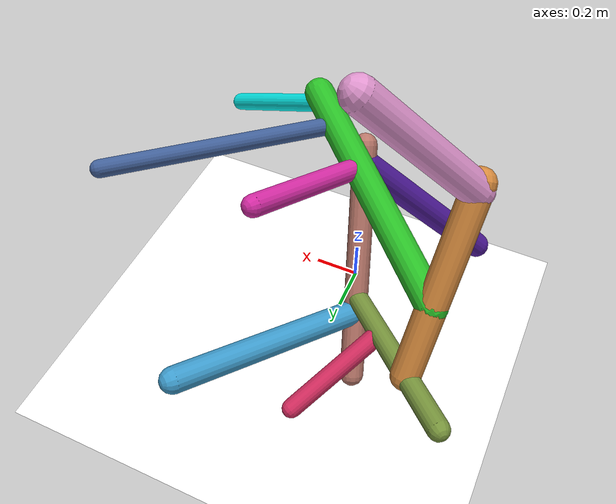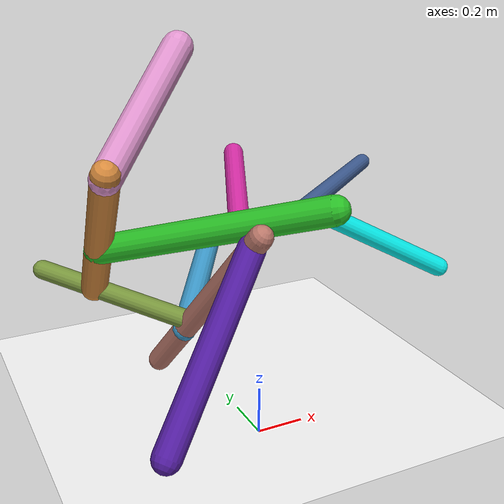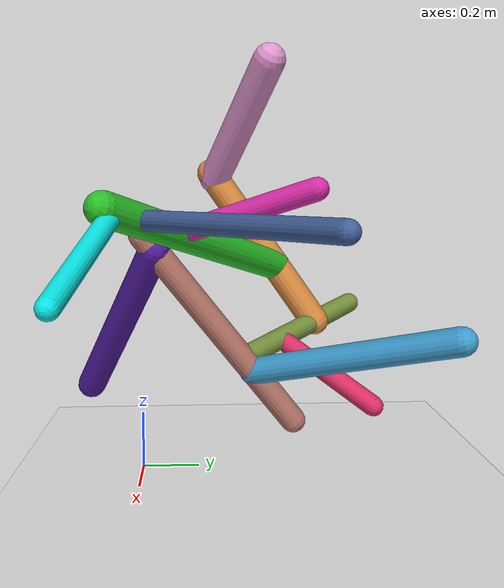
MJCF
<mujoco model="morphology">
  <option timestep="0.01"/>
  <default>
    <default class="/"/>
    <default class="0/"/>
    <default class="0/1/"/>
    <default class="0/2/"/>
    <default class="0/2/3/"/>
    <default class="0/2/4/"/>
    <default class="0/2/4/5/"/>
    <default class="0/2/4/5/6/"/>
    <default class="0/2/4/5/7/"/>
    <default class="0/2/4/5/8/"/>
    <default class="0/2/4/9/"/>
    <default class="0/10/"/>
  </default>
  <asset>
    <texture name="texplane" type="2d" builtin="checker" rgb1="0.10000000000000001 0.20000000000000001 0.29999999999999999" rgb2="0.20000000000000001 0.29999999999999999 0.40000000000000002" width="300" height="300"/>
    <material name="MatPlane" class="/" texture="texplane" texrepeat="20 20" specular="1" shininess="1" reflectance="0.5"/>
  </asset>
  <worldbody>
    <light name="//unnamed_light_0" class="/" directional="true" pos="0 0 1.5" dir="0 0 -1.3" cutoff="100" exponent="1" diffuse="1 1 1" specular="0.10000000000000001 0.10000000000000001 0.10000000000000001"/>
    <geom name="ground" class="/" type="plane" size="15 15 0.5" material="MatPlane" rgba="1 1 1 1"/>
    <site name="body" class="/" size="9.9999999999999995e-07 9.9999999999999995e-07 9.9999999999999995e-07" pos="0 0 0.84916887283325193"/>
    <body pos="0 0 0.84916887283325193" name="0/">
      <freejoint name="0/"/>
      <geom name="0/geom" class="0/" type="capsule" contype="1" conaffinity="1" condim="3" size="0.0494672707006482" rgba="0.72208494569027015 0.46383124850338331 0.41194762392329776 1" friction="0.59999999999999998 0.10000000000000001 0.10000000000000001" fromto="0 0 0 -0.21414844513648179 0.57323252468791863 -0.74916887572444424"/>
      <site name="0/end0" class="0/" size="0.0050000000000000001" pos="-0.21414844513648179 0.57323252468791863 -0.74916887572444424"/>
      <site name="0/attach1" class="0/" size="9.9999999999999995e-07 9.9999999999999995e-07 9.9999999999999995e-07" pos="-0.153136984130432 0.40991705534091105 -0.53572867250897194"/>
      <body pos="-0.153136984130432 0.40991705534091105 -0.53572867250897194" name="0/1/">
        <joint name="0/1/joint/" class="0/" type="hinge" axis="0 0 1" limited="true" range="-37.933956674139694 37.933956674139694"/>
        <geom name="0/1/geom" class="0/1/" type="capsule" contype="1" conaffinity="1" condim="3" size="0.052166626693578258" rgba="0.24075887596006418 0.60992251197264369 0.79980986442201107 1" friction="0.59999999999999998 0.10000000000000001 0.10000000000000001" fromto="0 0 0 0.44218960327257273 0.67677026487066705 0.19073556805387915"/>
        <site name="0/1/end1" class="0/1/" size="0.0050000000000000001" pos="0.44218960327257273 0.67677026487066705 0.19073556805387915"/>
      </body>
      <site name="0/attach2" class="0/" size="9.9999999999999995e-07 9.9999999999999995e-07 9.9999999999999995e-07" pos="-0.13791180717557591 0.3691623040323494 -0.48246548540198264"/>
      <body pos="-0.13791180717557591 0.3691623040323494 -0.48246548540198264" name="0/2/">
        <joint name="0/2/joint/" class="0/" type="hinge" axis="0 1 0" limited="true" range="-35.678086593743117 35.678086593743117"/>
        <geom name="0/2/geom" class="0/2/" type="capsule" contype="1" conaffinity="1" condim="3" size="0.042968340705630138" rgba="0.46536666383449166 0.57792519389536978 0.23382628635141456 1" friction="0.59999999999999998 0.10000000000000001 0.10000000000000001" fromto="0 0 0 -0.5069350259472547 0.50166222906680691 0.14133656650145254"/>
        <site name="0/2/end2" class="0/2/" size="0.0050000000000000001" pos="-0.5069350259472547 0.50166222906680691 0.14133656650145254"/>
        <site name="0/2/attach3" class="0/2/" size="9.9999999999999995e-07 9.9999999999999995e-07 9.9999999999999995e-07" pos="-0.16314656083371806 0.1614496201352284 0.045486252802656509"/>
        <body pos="-0.16314656083371806 0.1614496201352284 0.045486252802656509" name="0/2/3/">
          <joint name="0/2/3/joint/" class="0/2/" type="hinge" axis="1.3877787807814457e-17 -0.27117950446711175 0.96252879248205958" limited="true" range="-51.965993796605389 51.965993796605389"/>
          <geom name="0/2/3/geom" class="0/2/3/" type="capsule" contype="1" conaffinity="1" condim="3" size="0.039572520129649805" rgba="0.84469272069934365 0.17666229199153816 0.38157777708286333 1" friction="0.59999999999999998 0.10000000000000001 0.10000000000000001" fromto="0 0 0 0.22744192779543848 0.33448668980301632 -0.22217255837190053"/>
          <site name="0/2/3/end3" class="0/2/3/" size="0.0050000000000000001" pos="0.22744192779543848 0.33448668980301632 -0.22217255837190053"/>
        </body>
        <site name="0/2/attach4" class="0/2/" size="9.9999999999999995e-07 9.9999999999999995e-07 9.9999999999999995e-07" pos="-0.32471018202263396 0.32133276529823362 0.090531172410871955"/>
        <body pos="-0.32471018202263396 0.32133276529823362 0.090531172410871955" name="0/2/4/">
          <joint name="0/2/4/joint/" class="0/2/" type="hinge" axis="1.3877787807814457e-17 -0.27117950446711175 0.96252879248205958" limited="true" range="-47.616036304325462 47.616036304325462"/>
          <geom name="0/2/4/geom" class="0/2/4/" type="capsule" contype="1" conaffinity="1" condim="3" size="0.059001911700485798" rgba="0.8363445953944163 0.53938012407515412 0.23954322197817479 1" friction="0.59999999999999998 0.10000000000000001 0.10000000000000001" fromto="0 0 0 -0.044536394291860182 -0.43736008393658454 0.62893304217937773"/>
          <site name="0/2/4/end4" class="0/2/4/" size="0.0050000000000000001" pos="-0.044536394291860182 -0.43736008393658454 0.62893304217937773"/>
          <site name="0/2/4/attach5" class="0/2/4/" size="9.9999999999999995e-07 9.9999999999999995e-07 9.9999999999999995e-07" pos="-0.016828649983450815 -0.16526213866951178 0.23765044741841812"/>
          <body pos="-0.016828649983450815 -0.16526213866951178 0.23765044741841812" name="0/2/4/5/">
            <geom name="0/2/4/5/geom" class="0/2/4/5/" type="capsule" contype="1" conaffinity="1" condim="3" size="0.060904466573494957" rgba="0.1634184065751787 0.73945743559977251 0.15097514452572069 1" friction="0.59999999999999998 0.10000000000000001 0.10000000000000001" fromto="0 0 0 0.72954030359459465 -0.63215210639668196 0.25557717849418826"/>
            <site name="0/2/4/5/end5" class="0/2/4/5/" size="0.0050000000000000001" pos="0.72954030359459465 -0.63215210639668196 0.25557717849418826"/>
            <site name="0/2/4/5/attach6" class="0/2/4/5/" size="9.9999999999999995e-07 9.9999999999999995e-07 9.9999999999999995e-07" pos="0.45335811668746345 -0.39283818454432018 0.15882328603302046"/>
            <body pos="0.45335811668746345 -0.39283818454432018 0.15882328603302046" name="0/2/4/5/6/">
              <joint name="0/2/4/5/6/joint/" class="0/2/4/5/" type="hinge" axis="-2.7755575615628914e-17 0.37482236217575327 0.92709664912186407" limited="true" range="-54.536576295120234 54.536576295120234"/>
              <geom name="0/2/4/5/6/geom" class="0/2/4/5/6/" type="capsule" contype="1" conaffinity="1" condim="3" size="0.042355108393929343" rgba="0.82599712644444057 0.16630231200018109 0.6374901367281447 1" friction="0.59999999999999998 0.10000000000000001 0.10000000000000001" fromto="0 0 0 0.20295309187663357 0.47764977789031882 0.16041794843207324"/>
              <site name="0/2/4/5/6/end6" class="0/2/4/5/6/" size="0.0050000000000000001" pos="0.20295309187663357 0.47764977789031882 0.16041794843207324"/>
            </body>
            <site name="0/2/4/5/attach7" class="0/2/4/5/" size="9.9999999999999995e-07 9.9999999999999995e-07 9.9999999999999995e-07" pos="0.60885160669086402 -0.52757445168720285 0.21329675001228704"/>
            <body pos="0.60885160669086402 -0.52757445168720285 0.21329675001228704" name="0/2/4/5/7/">
              <joint name="0/2/4/5/7/joint/" class="0/2/4/5/" type="hinge" axis="0.68283072913089782 0.67731513484655681 -0.27383645385952038" limited="true" range="-52.252921503539604 52.252921503539604"/>
              <geom name="0/2/4/5/7/geom" class="0/2/4/5/7/" type="capsule" contype="1" conaffinity="1" condim="3" size="0.036105561881775904" rgba="0.24848776017168117 0.36883593790664815 0.58609742922836372 1" friction="0.59999999999999998 0.10000000000000001 0.10000000000000001" fromto="0 0 0 0.71967839977963144 0.59687852477562431 -0.0077393665497609287"/>
              <site name="0/2/4/5/7/end7" class="0/2/4/5/7/" size="0.0050000000000000001" pos="0.71967839977963144 0.59687852477562431 -0.0077393665497609287"/>
            </body>
            <site name="0/2/4/5/attach8" class="0/2/4/5/" size="9.9999999999999995e-07 9.9999999999999995e-07 9.9999999999999995e-07" pos="0.69072058591842544 -0.59851453191614756 0.24197760919728808"/>
            <body pos="0.69072058591842544 -0.59851453191614756 0.24197760919728808" name="0/2/4/5/8/">
              <joint name="0/2/4/5/8/joint/" class="0/2/4/5/" type="hinge" axis="-2.7755575615628914e-17 0.37482236217575327 0.92709664912186407" limited="true" range="-69.859859058551791 69.859859058551791"/>
              <geom name="0/2/4/5/8/geom" class="0/2/4/5/8/" type="capsule" contype="1" conaffinity="1" condim="3" size="0.03723578997378401" rgba="0.021742336176411636 0.89134967643218088 0.88576537877910955 1" friction="0.59999999999999998 0.10000000000000001 0.10000000000000001" fromto="0 0 0 0.46895878397508817 -0.12765825921395335 -0.25148145448684445"/>
              <site name="0/2/4/5/8/end8" class="0/2/4/5/8/" size="0.0050000000000000001" pos="0.46895878397508817 -0.12765825921395335 -0.25148145448684445"/>
            </body>
          </body>
          <site name="0/2/4/attach9" class="0/2/4/" size="9.9999999999999995e-07 9.9999999999999995e-07 9.9999999999999995e-07" pos="-0.042988462151249268 -0.42215894918577562 0.60707348920565196"/>
          <body pos="-0.042988462151249268 -0.42215894918577562 0.60707348920565196" name="0/2/4/9/">
            <geom name="0/2/4/9/geom" class="0/2/4/9/" type="capsule" contype="1" conaffinity="1" condim="3" size="0.0637555505775982" rgba="0.86911805660076269 0.57694730905514346 0.8000767029259177 1" friction="0.59999999999999998 0.10000000000000001 0.10000000000000001" fromto="0 0 0 0.37595542056521292 0.20180459599926026 0.43444000546976547"/>
            <site name="0/2/4/9/end9" class="0/2/4/9/" size="0.0050000000000000001" pos="0.37595542056521292 0.20180459599926026 0.43444000546976547"/>
          </body>
        </body>
      </body>
      <site name="0/attach10" class="0/" size="9.9999999999999995e-07 9.9999999999999995e-07 9.9999999999999995e-07" pos="-0.016144320599290583 0.043215114873257361 -0.056478684703954771"/>
      <body pos="-0.016144320599290583 0.043215114873257361 -0.056478684703954771" name="0/10/">
        <geom name="0/10/geom" class="0/10/" type="capsule" contype="1" conaffinity="1" condim="3" size="0.057560098638505336" rgba="0.31881156436997615 0.11070247249691811 0.62262605085985889 1" friction="0.59999999999999998 0.10000000000000001 0.10000000000000001" fromto="0 0 0 -0.47960453045221801 -0.30052790061579393 -0.60286071110636774"/>
        <site name="0/10/end10" class="0/10/" size="0.0050000000000000001" pos="-0.47960453045221801 -0.30052790061579393 -0.60286071110636774"/>
      </body>
      <camera name="0/iso" class="0/" mode="trackcom" pos="-2.2999999999999998 -2.2999999999999998 1" xyaxes="0.45000000000000001 -0.45000000000000001 0 0.29999999999999999 0.14999999999999999 0.93999999999999995"/>
    </body>
  </worldbody>
  <actuator>
    <motor name="0/1/motor" class="0/1/" ctrllimited="true" ctrlrange="-1 1" gear="50" joint="0/1/joint/"/>
    <motor name="0/2/motor" class="0/2/" ctrllimited="true" ctrlrange="-1 1" gear="63" joint="0/2/joint/"/>
    <motor name="0/2/3/motor" class="0/2/3/" ctrllimited="true" ctrlrange="-1 1" gear="54" joint="0/2/3/joint/"/>
    <motor name="0/2/4/motor" class="0/2/4/" ctrllimited="true" ctrlrange="-1 1" gear="64" joint="0/2/4/joint/"/>
    <motor name="0/2/4/5/6/motor" class="0/2/4/5/6/" ctrllimited="true" ctrlrange="-1 1" gear="56" joint="0/2/4/5/6/joint/"/>
    <motor name="0/2/4/5/7/motor" class="0/2/4/5/7/" ctrllimited="true" ctrlrange="-1 1" gear="79" joint="0/2/4/5/7/joint/"/>
    <motor name="0/2/4/5/8/motor" class="0/2/4/5/8/" ctrllimited="true" ctrlrange="-1 1" gear="55" joint="0/2/4/5/8/joint/"/>
  </actuator>
  <sensor>
    <subtreelinvel name="velocity" body="0/"/>
  </sensor>
</mujoco>
